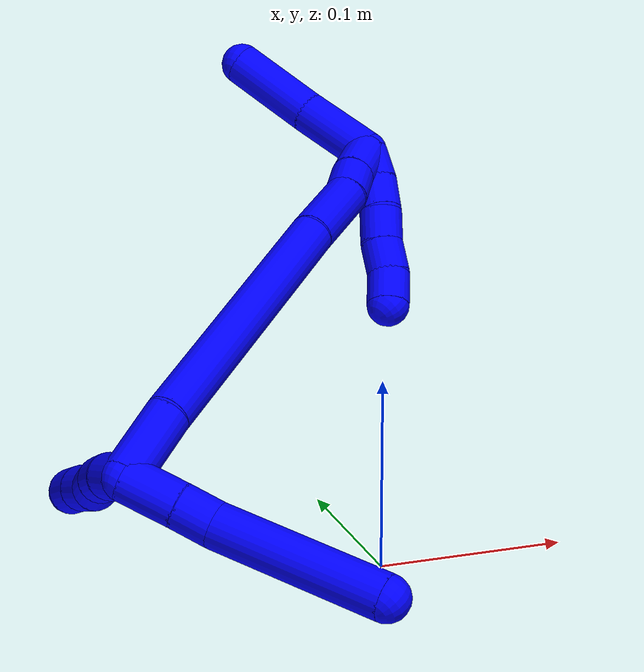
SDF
<sdf version="1.7">
 <world name="default">
  <model name="1">
   <static>0</static>
   <link name="1">
    <collision name="collision-cylinder-e_1_2_8">
     <pose>0.012931 -0.008279 0.002729 1.25238 0.977633 0.734493</pose>
     <geometry><cylinder><radius>0.0125</radius><length>0.031191</length></cylinder></geometry>
     <surface>
      <friction><ode><mu>1.16</mu><mu2>1.16</mu2><slip1>0</slip1><slip2>0</slip2></ode></friction>
      <contact><ode><kp>1e+06</kp><kd>1</kd><max_vel>0</max_vel><min_depth>0.001</min_depth></ode></contact>
     </surface>
    </collision>
    <visual name="visual-cylinder-e_1_2_8">
     <pose>0.012931 -0.008279 0.002729 1.25238 0.977633 0.734493</pose>
     <geometry><cylinder><radius>0.0125</radius><length>0.031191</length></cylinder></geometry>
     <material><ambient>0 0 1 1</ambient></material>
    </visual>
    <collision name="collision-cylinder-e_2_8_9">
     <pose>0.034975 -0.021853 0.007278 1.23975 1.01988 0.759584</pose>
     <geometry><cylinder><radius>0.0125</radius><length>0.021389</length></cylinder></geometry>
     <surface>
      <friction><ode><mu>1.16</mu><mu2>1.16</mu2><slip1>0</slip1><slip2>0</slip2></ode></friction>
      <contact><ode><kp>1e+06</kp><kd>1</kd><max_vel>0</max_vel><min_depth>0.001</min_depth></ode></contact>
     </surface>
    </collision>
    <visual name="visual-cylinder-e_2_8_9">
     <pose>0.034975 -0.021853 0.007278 1.23975 1.01988 0.759584</pose>
     <geometry><cylinder><radius>0.0125</radius><length>0.021389</length></cylinder></geometry>
     <material><ambient>0 0 1 1</ambient></material>
    </visual>
    <collision name="collision-cylinder-e_3_9_6">
     <pose>0.07711 -0.062424 0.015238 1.39847 0.74498 0.634961</pose>
     <geometry><cylinder><radius>0.0125</radius><length>0.09742</length></cylinder></geometry>
     <surface>
      <friction><ode><mu>1.16</mu><mu2>1.16</mu2><slip1>0</slip1><slip2>0</slip2></ode></friction>
      <contact><ode><kp>1e+06</kp><kd>1</kd><max_vel>0</max_vel><min_depth>0.001</min_depth></ode></contact>
     </surface>
    </collision>
    <visual name="visual-cylinder-e_3_9_6">
     <pose>0.07711 -0.062424 0.015238 1.39847 0.74498 0.634961</pose>
     <geometry><cylinder><radius>0.0125</radius><length>0.09742</length></cylinder></geometry>
     <material><ambient>0 0 1 1</ambient></material>
    </visual>
    <collision name="collision-cylinder-e_1_2_10">
     <pose>-0.000345 0.009913 0.001271 -1.44329 -0.034492 0.030353</pose>
     <geometry><cylinder><radius>0.0125</radius><length>0.02</length></cylinder></geometry>
     <surface>
      <friction><ode><mu>1.16</mu><mu2>1.16</mu2><slip1>0</slip1><slip2>0</slip2></ode></friction>
      <contact><ode><kp>1e+06</kp><kd>1</kd><max_vel>0</max_vel><min_depth>0.001</min_depth></ode></contact>
     </surface>
    </collision>
    <visual name="visual-cylinder-e_1_2_10">
     <pose>-0.000345 0.009913 0.001271 -1.44329 -0.034492 0.030353</pose>
     <geometry><cylinder><radius>0.0125</radius><length>0.02</length></cylinder></geometry>
     <material><ambient>0 0 1 1</ambient></material>
    </visual>
    <collision name="collision-cylinder-e_2_10_11">
     <pose>0.000945 0.029585 0.003984 -1.42409 0.164173 -0.141777</pose>
     <geometry><cylinder><radius>0.0125</radius><length>0.02</length></cylinder></geometry>
     <surface>
      <friction><ode><mu>1.16</mu><mu2>1.16</mu2><slip1>0</slip1><slip2>0</slip2></ode></friction>
      <contact><ode><kp>1e+06</kp><kd>1</kd><max_vel>0</max_vel><min_depth>0.001</min_depth></ode></contact>
     </surface>
    </collision>
    <visual name="visual-cylinder-e_2_10_11">
     <pose>0.000945 0.029585 0.003984 -1.42409 0.164173 -0.141777</pose>
     <geometry><cylinder><radius>0.0125</radius><length>0.02</length></cylinder></geometry>
     <material><ambient>0 0 1 1</ambient></material>
    </visual>
    <collision name="collision-cylinder-e_3_11_12">
     <pose>0.005499 0.048858 0.006418 -1.46691 0.296306 -0.267386</pose>
     <geometry><cylinder><radius>0.0125</radius><length>0.02</length></cylinder></geometry>
     <surface>
      <friction><ode><mu>1.16</mu><mu2>1.16</mu2><slip1>0</slip1><slip2>0</slip2></ode></friction>
      <contact><ode><kp>1e+06</kp><kd>1</kd><max_vel>0</max_vel><min_depth>0.001</min_depth></ode></contact>
     </surface>
    </collision>
    <visual name="visual-cylinder-e_3_11_12">
     <pose>0.005499 0.048858 0.006418 -1.46691 0.296306 -0.267386</pose>
     <geometry><cylinder><radius>0.0125</radius><length>0.02</length></cylinder></geometry>
     <material><ambient>0 0 1 1</ambient></material>
    </visual>
    <collision name="collision-cylinder-e_4_12_13">
     <pose>0.008601 0.068316 0.008436 -1.46797 0.018224 -0.016441</pose>
     <geometry><cylinder><radius>0.0125</radius><length>0.02</length></cylinder></geometry>
     <surface>
      <friction><ode><mu>1.16</mu><mu2>1.16</mu2><slip1>0</slip1><slip2>0</slip2></ode></friction>
      <contact><ode><kp>1e+06</kp><kd>1</kd><max_vel>0</max_vel><min_depth>0.001</min_depth></ode></contact>
     </surface>
    </collision>
    <visual name="visual-cylinder-e_4_12_13">
     <pose>0.008601 0.068316 0.008436 -1.46797 0.018224 -0.016441</pose>
     <geometry><cylinder><radius>0.0125</radius><length>0.02</length></cylinder></geometry>
     <material><ambient>0 0 1 1</ambient></material>
    </visual>
    <collision name="collision-cylinder-e_5_13_5">
     <pose>0.009874 0.088165 0.010316 -1.48475 0.109286 -0.100281</pose>
     <geometry><cylinder><radius>0.0125</radius><length>0.02</length></cylinder></geometry>
     <surface>
      <friction><ode><mu>1.16</mu><mu2>1.16</mu2><slip1>0</slip1><slip2>0</slip2></ode></friction>
      <contact><ode><kp>1e+06</kp><kd>1</kd><max_vel>0</max_vel><min_depth>0.001</min_depth></ode></contact>
     </surface>
    </collision>
    <visual name="visual-cylinder-e_5_13_5">
     <pose>0.009874 0.088165 0.010316 -1.48475 0.109286 -0.100281</pose>
     <geometry><cylinder><radius>0.0125</radius><length>0.02</length></cylinder></geometry>
     <material><ambient>0 0 1 1</ambient></material>
    </visual>
    <collision name="collision-cylinder-e_1_2_14">
     <pose>-0.001966 0.003095 0.021681 -0.141794 -0.089516 0.006361</pose>
     <geometry><cylinder><radius>0.0125</radius><length>0.043979</length></cylinder></geometry>
     <surface>
      <friction><ode><mu>1.16</mu><mu2>1.16</mu2><slip1>0</slip1><slip2>0</slip2></ode></friction>
      <contact><ode><kp>1e+06</kp><kd>1</kd><max_vel>0</max_vel><min_depth>0.001</min_depth></ode></contact>
     </surface>
    </collision>
    <visual name="visual-cylinder-e_1_2_14">
     <pose>-0.001966 0.003095 0.021681 -0.141794 -0.089516 0.006361</pose>
     <geometry><cylinder><radius>0.0125</radius><length>0.043979</length></cylinder></geometry>
     <material><ambient>0 0 1 1</ambient></material>
    </visual>
    <collision name="collision-cylinder-e_2_14_15">
     <pose>-0.003615 0.026135 0.12201 -0.248359 0.003907 -0.000488</pose>
     <geometry><cylinder><radius>0.0125</radius><length>0.162274</length></cylinder></geometry>
     <surface>
      <friction><ode><mu>1.16</mu><mu2>1.16</mu2><slip1>0</slip1><slip2>0</slip2></ode></friction>
      <contact><ode><kp>1e+06</kp><kd>1</kd><max_vel>0</max_vel><min_depth>0.001</min_depth></ode></contact>
     </surface>
    </collision>
    <visual name="visual-cylinder-e_2_14_15">
     <pose>-0.003615 0.026135 0.12201 -0.248359 0.003907 -0.000488</pose>
     <geometry><cylinder><radius>0.0125</radius><length>0.162274</length></cylinder></geometry>
     <material><ambient>0 0 1 1</ambient></material>
    </visual>
    <collision name="collision-cylinder-e_3_15_16">
     <pose>-0.001579 0.054433 0.222796 -0.3608 0.072492 -0.013227</pose>
     <geometry><cylinder><radius>0.0125</radius><length>0.04745</length></cylinder></geometry>
     <surface>
      <friction><ode><mu>1.16</mu><mu2>1.16</mu2><slip1>0</slip1><slip2>0</slip2></ode></friction>
      <contact><ode><kp>1e+06</kp><kd>1</kd><max_vel>0</max_vel><min_depth>0.001</min_depth></ode></contact>
     </surface>
    </collision>
    <visual name="visual-cylinder-e_3_15_16">
     <pose>-0.001579 0.054433 0.222796 -0.3608 0.072492 -0.013227</pose>
     <geometry><cylinder><radius>0.0125</radius><length>0.04745</length></cylinder></geometry>
     <material><ambient>0 0 1 1</ambient></material>
    </visual>
    <collision name="collision-cylinder-e_4_16_17">
     <pose>-0.001424 0.067175 0.253838 -0.458028 -0.156196 0.03648</pose>
     <geometry><cylinder><radius>0.0125</radius><length>0.020096</length></cylinder></geometry>
     <surface>
      <friction><ode><mu>1.16</mu><mu2>1.16</mu2><slip1>0</slip1><slip2>0</slip2></ode></friction>
      <contact><ode><kp>1e+06</kp><kd>1</kd><max_vel>0</max_vel><min_depth>0.001</min_depth></ode></contact>
     </surface>
    </collision>
    <visual name="visual-cylinder-e_4_16_17">
     <pose>-0.001424 0.067175 0.253838 -0.458028 -0.156196 0.03648</pose>
     <geometry><cylinder><radius>0.0125</radius><length>0.020096</length></cylinder></geometry>
     <material><ambient>0 0 1 1</ambient></material>
    </visual>
    <collision name="collision-cylinder-e_5_17_1">
     <pose>-0.003441 0.076798 0.274741 -0.411254 -0.034685 0.007235</pose>
     <geometry><cylinder><radius>0.0125</radius><length>0.026201</length></cylinder></geometry>
     <surface>
      <friction><ode><mu>1.16</mu><mu2>1.16</mu2><slip1>0</slip1><slip2>0</slip2></ode></friction>
      <contact><ode><kp>1e+06</kp><kd>1</kd><max_vel>0</max_vel><min_depth>0.001</min_depth></ode></contact>
     </surface>
    </collision>
    <visual name="visual-cylinder-e_5_17_1">
     <pose>-0.003441 0.076798 0.274741 -0.411254 -0.034685 0.007235</pose>
     <geometry><cylinder><radius>0.0125</radius><length>0.026201</length></cylinder></geometry>
     <material><ambient>0 0 1 1</ambient></material>
    </visual>
    <collision name="collision-cylinder-e_1_1_18">
     <pose>-0.02156 0.096979 0.28898 -1.42222 -0.863065 0.755285</pose>
     <geometry><cylinder><radius>0.0125</radius><length>0.046495</length></cylinder></geometry>
     <surface>
      <friction><ode><mu>1.16</mu><mu2>1.16</mu2><slip1>0</slip1><slip2>0</slip2></ode></friction>
      <contact><ode><kp>1e+06</kp><kd>1</kd><max_vel>0</max_vel><min_depth>0.001</min_depth></ode></contact>
     </surface>
    </collision>
    <visual name="visual-cylinder-e_1_1_18">
     <pose>-0.02156 0.096979 0.28898 -1.42222 -0.863065 0.755285</pose>
     <geometry><cylinder><radius>0.0125</radius><length>0.046495</length></cylinder></geometry>
     <material><ambient>0 0 1 1</ambient></material>
    </visual>
    <collision name="collision-cylinder-e_2_18_4">
     <pose>-0.061476 0.126691 0.292804 -1.46371 -0.982292 0.895768</pose>
     <geometry><cylinder><radius>0.0125</radius><length>0.053505</length></cylinder></geometry>
     <surface>
      <friction><ode><mu>1.16</mu><mu2>1.16</mu2><slip1>0</slip1><slip2>0</slip2></ode></friction>
      <contact><ode><kp>1e+06</kp><kd>1</kd><max_vel>0</max_vel><min_depth>0.001</min_depth></ode></contact>
     </surface>
    </collision>
    <visual name="visual-cylinder-e_2_18_4">
     <pose>-0.061476 0.126691 0.292804 -1.46371 -0.982292 0.895768</pose>
     <geometry><cylinder><radius>0.0125</radius><length>0.053505</length></cylinder></geometry>
     <material><ambient>0 0 1 1</ambient></material>
    </visual>
    <collision name="collision-cylinder-e_1_1_19">
     <pose>0.003876 0.079249 0.281099 2.68353 0.890186 2.23245</pose>
     <geometry><cylinder><radius>0.0125</radius><length>0.02</length></cylinder></geometry>
     <surface>
      <friction><ode><mu>1.16</mu><mu2>1.16</mu2><slip1>0</slip1><slip2>0</slip2></ode></friction>
      <contact><ode><kp>1e+06</kp><kd>1</kd><max_vel>0</max_vel><min_depth>0.001</min_depth></ode></contact>
     </surface>
    </collision>
    <visual name="visual-cylinder-e_1_1_19">
     <pose>0.003876 0.079249 0.281099 2.68353 0.890186 2.23245</pose>
     <geometry><cylinder><radius>0.0125</radius><length>0.02</length></cylinder></geometry>
     <material><ambient>0 0 1 1</ambient></material>
    </visual>
    <collision name="collision-cylinder-e_2_19_20">
     <pose>0.018042 0.073463 0.268377 2.74021 0.69375 2.11644</pose>
     <geometry><cylinder><radius>0.0125</radius><length>0.02</length></cylinder></geometry>
     <surface>
      <friction><ode><mu>1.16</mu><mu2>1.16</mu2><slip1>0</slip1><slip2>0</slip2></ode></friction>
      <contact><ode><kp>1e+06</kp><kd>1</kd><max_vel>0</max_vel><min_depth>0.001</min_depth></ode></contact>
     </surface>
    </collision>
    <visual name="visual-cylinder-e_2_19_20">
     <pose>0.018042 0.073463 0.268377 2.74021 0.69375 2.11644</pose>
     <geometry><cylinder><radius>0.0125</radius><length>0.02</length></cylinder></geometry>
     <material><ambient>0 0 1 1</ambient></material>
    </visual>
    <collision name="collision-cylinder-e_3_20_21">
     <pose>0.030952 0.069186 0.253821 2.97308 0.709558 2.69328</pose>
     <geometry><cylinder><radius>0.0125</radius><length>0.02</length></cylinder></geometry>
     <surface>
      <friction><ode><mu>1.16</mu><mu2>1.16</mu2><slip1>0</slip1><slip2>0</slip2></ode></friction>
      <contact><ode><kp>1e+06</kp><kd>1</kd><max_vel>0</max_vel><min_depth>0.001</min_depth></ode></contact>
     </surface>
    </collision>
    <visual name="visual-cylinder-e_3_20_21">
     <pose>0.030952 0.069186 0.253821 2.97308 0.709558 2.69328</pose>
     <geometry><cylinder><radius>0.0125</radius><length>0.02</length></cylinder></geometry>
     <material><ambient>0 0 1 1</ambient></material>
    </visual>
    <collision name="collision-cylinder-e_4_21_22">
     <pose>0.044686 0.065349 0.239915 2.76187 0.806567 2.29521</pose>
     <geometry><cylinder><radius>0.0125</radius><length>0.02</length></cylinder></geometry>
     <surface>
      <friction><ode><mu>1.16</mu><mu2>1.16</mu2><slip1>0</slip1><slip2>0</slip2></ode></friction>
      <contact><ode><kp>1e+06</kp><kd>1</kd><max_vel>0</max_vel><min_depth>0.001</min_depth></ode></contact>
     </surface>
    </collision>
    <visual name="visual-cylinder-e_4_21_22">
     <pose>0.044686 0.065349 0.239915 2.76187 0.806567 2.29521</pose>
     <geometry><cylinder><radius>0.0125</radius><length>0.02</length></cylinder></geometry>
     <material><ambient>0 0 1 1</ambient></material>
    </visual>
    <collision name="collision-cylinder-e_5_22_3">
     <pose>0.057195 0.060344 0.22536 2.84987 0.557385 2.19297</pose>
     <geometry><cylinder><radius>0.0125</radius><length>0.02</length></cylinder></geometry>
     <surface>
      <friction><ode><mu>1.16</mu><mu2>1.16</mu2><slip1>0</slip1><slip2>0</slip2></ode></friction>
      <contact><ode><kp>1e+06</kp><kd>1</kd><max_vel>0</max_vel><min_depth>0.001</min_depth></ode></contact>
     </surface>
    </collision>
    <visual name="visual-cylinder-e_5_22_3">
     <pose>0.057195 0.060344 0.22536 2.84987 0.557385 2.19297</pose>
     <geometry><cylinder><radius>0.0125</radius><length>0.02</length></cylinder></geometry>
     <material><ambient>0 0 1 1</ambient></material>
    </visual>
    <collision name="collision-sphere-3">
     <pose>0.062484 0.057903 0.217232 0 -0 0</pose>
     <geometry><sphere><radius>0.0125</radius></sphere></geometry>
     <surface>
      <friction><ode><mu>1.16</mu><mu2>1.16</mu2><slip1>0</slip1><slip2>0</slip2></ode></friction>
      <contact><ode><kp>1e+06</kp><kd>1</kd><max_vel>0</max_vel><min_depth>0.001</min_depth></ode></contact>
     </surface>
    </collision>
    <visual name="visual-sphere-3">
     <pose>0.062484 0.057903 0.217232 0 -0 0</pose>
     <geometry><sphere><radius>0.0125</radius></sphere></geometry>
     <material><ambient>0 0 1 1</ambient></material>
    </visual>
    <collision name="collision-sphere-22">
     <pose>0.051905 0.062784 0.233488 0 -0 0</pose>
     <geometry><sphere><radius>0.0125</radius></sphere></geometry>
     <surface>
      <friction><ode><mu>1.16</mu><mu2>1.16</mu2><slip1>0</slip1><slip2>0</slip2></ode></friction>
      <contact><ode><kp>1e+06</kp><kd>1</kd><max_vel>0</max_vel><min_depth>0.001</min_depth></ode></contact>
     </surface>
    </collision>
    <visual name="visual-sphere-22">
     <pose>0.051905 0.062784 0.233488 0 -0 0</pose>
     <geometry><sphere><radius>0.0125</radius></sphere></geometry>
     <material><ambient>0 0 1 1</ambient></material>
    </visual>
    <collision name="collision-sphere-21">
     <pose>0.037467 0.067914 0.246342 0 -0 0</pose>
     <geometry><sphere><radius>0.0125</radius></sphere></geometry>
     <surface>
      <friction><ode><mu>1.16</mu><mu2>1.16</mu2><slip1>0</slip1><slip2>0</slip2></ode></friction>
      <contact><ode><kp>1e+06</kp><kd>1</kd><max_vel>0</max_vel><min_depth>0.001</min_depth></ode></contact>
     </surface>
    </collision>
    <visual name="visual-sphere-21">
     <pose>0.037467 0.067914 0.246342 0 -0 0</pose>
     <geometry><sphere><radius>0.0125</radius></sphere></geometry>
     <material><ambient>0 0 1 1</ambient></material>
    </visual>
    <collision name="collision-sphere-20">
     <pose>0.024437 0.070459 0.2613 0 -0 0</pose>
     <geometry><sphere><radius>0.0125</radius></sphere></geometry>
     <surface>
      <friction><ode><mu>1.16</mu><mu2>1.16</mu2><slip1>0</slip1><slip2>0</slip2></ode></friction>
      <contact><ode><kp>1e+06</kp><kd>1</kd><max_vel>0</max_vel><min_depth>0.001</min_depth></ode></contact>
     </surface>
    </collision>
    <visual name="visual-sphere-20">
     <pose>0.024437 0.070459 0.2613 0 -0 0</pose>
     <geometry><sphere><radius>0.0125</radius></sphere></geometry>
     <material><ambient>0 0 1 1</ambient></material>
    </visual>
    <collision name="collision-sphere-19">
     <pose>0.011648 0.076466 0.275455 0 -0 0</pose>
     <geometry><sphere><radius>0.0125</radius></sphere></geometry>
     <surface>
      <friction><ode><mu>1.16</mu><mu2>1.16</mu2><slip1>0</slip1><slip2>0</slip2></ode></friction>
      <contact><ode><kp>1e+06</kp><kd>1</kd><max_vel>0</max_vel><min_depth>0.001</min_depth></ode></contact>
     </surface>
    </collision>
    <visual name="visual-sphere-19">
     <pose>0.011648 0.076466 0.275455 0 -0 0</pose>
     <geometry><sphere><radius>0.0125</radius></sphere></geometry>
     <material><ambient>0 0 1 1</ambient></material>
    </visual>
    <collision name="collision-sphere-11">
     <pose>0.002579 0.039345 0.005426 0 -0 0</pose>
     <geometry><sphere><radius>0.0125</radius></sphere></geometry>
     <surface>
      <friction><ode><mu>1.16</mu><mu2>1.16</mu2><slip1>0</slip1><slip2>0</slip2></ode></friction>
      <contact><ode><kp>1e+06</kp><kd>1</kd><max_vel>0</max_vel><min_depth>0.001</min_depth></ode></contact>
     </surface>
    </collision>
    <visual name="visual-sphere-11">
     <pose>0.002579 0.039345 0.005426 0 -0 0</pose>
     <geometry><sphere><radius>0.0125</radius></sphere></geometry>
     <material><ambient>0 0 1 1</ambient></material>
    </visual>
    <collision name="collision-sphere-10">
     <pose>-0.00069 0.019826 0.002542 0 -0 0</pose>
     <geometry><sphere><radius>0.0125</radius></sphere></geometry>
     <surface>
      <friction><ode><mu>1.16</mu><mu2>1.16</mu2><slip1>0</slip1><slip2>0</slip2></ode></friction>
      <contact><ode><kp>1e+06</kp><kd>1</kd><max_vel>0</max_vel><min_depth>0.001</min_depth></ode></contact>
     </surface>
    </collision>
    <visual name="visual-sphere-10">
     <pose>-0.00069 0.019826 0.002542 0 -0 0</pose>
     <geometry><sphere><radius>0.0125</radius></sphere></geometry>
     <material><ambient>0 0 1 1</ambient></material>
    </visual>
    <collision name="collision-sphere-6">
     <pose>0.110134 -0.0977 0.021378 0 -0 0</pose>
     <geometry><sphere><radius>0.0125</radius></sphere></geometry>
     <surface>
      <friction><ode><mu>1.16</mu><mu2>1.16</mu2><slip1>0</slip1><slip2>0</slip2></ode></friction>
      <contact><ode><kp>1e+06</kp><kd>1</kd><max_vel>0</max_vel><min_depth>0.001</min_depth></ode></contact>
     </surface>
    </collision>
    <visual name="visual-sphere-6">
     <pose>0.110134 -0.0977 0.021378 0 -0 0</pose>
     <geometry><sphere><radius>0.0125</radius></sphere></geometry>
     <material><ambient>0 0 1 1</ambient></material>
    </visual>
    <collision name="collision-sphere-9">
     <pose>0.044087 -0.027147 0.009097 0 -0 0</pose>
     <geometry><sphere><radius>0.0125</radius></sphere></geometry>
     <surface>
      <friction><ode><mu>1.16</mu><mu2>1.16</mu2><slip1>0</slip1><slip2>0</slip2></ode></friction>
      <contact><ode><kp>1e+06</kp><kd>1</kd><max_vel>0</max_vel><min_depth>0.001</min_depth></ode></contact>
     </surface>
    </collision>
    <visual name="visual-sphere-9">
     <pose>0.044087 -0.027147 0.009097 0 -0 0</pose>
     <geometry><sphere><radius>0.0125</radius></sphere></geometry>
     <material><ambient>0 0 1 1</ambient></material>
    </visual>
    <collision name="collision-sphere-2">
     <geometry><sphere><radius>0.0125</radius></sphere></geometry>
     <surface>
      <friction><ode><mu>1.16</mu><mu2>1.16</mu2><slip1>0</slip1><slip2>0</slip2></ode></friction>
      <contact><ode><kp>1e+06</kp><kd>1</kd><max_vel>0</max_vel><min_depth>0.001</min_depth></ode></contact>
     </surface>
    </collision>
    <visual name="visual-sphere-2">
     <geometry><sphere><radius>0.0125</radius></sphere></geometry>
     <material><ambient>0 0 1 1</ambient></material>
    </visual>
    <collision name="collision-sphere-8">
     <pose>0.025862 -0.016559 0.005458 0 -0 0</pose>
     <geometry><sphere><radius>0.0125</radius></sphere></geometry>
     <surface>
      <friction><ode><mu>1.16</mu><mu2>1.16</mu2><slip1>0</slip1><slip2>0</slip2></ode></friction>
      <contact><ode><kp>1e+06</kp><kd>1</kd><max_vel>0</max_vel><min_depth>0.001</min_depth></ode></contact>
     </surface>
    </collision>
    <visual name="visual-sphere-8">
     <pose>0.025862 -0.016559 0.005458 0 -0 0</pose>
     <geometry><sphere><radius>0.0125</radius></sphere></geometry>
     <material><ambient>0 0 1 1</ambient></material>
    </visual>
    <collision name="collision-sphere-12">
     <pose>0.008419 0.05837 0.00741 0 -0 0</pose>
     <geometry><sphere><radius>0.0125</radius></sphere></geometry>
     <surface>
      <friction><ode><mu>1.16</mu><mu2>1.16</mu2><slip1>0</slip1><slip2>0</slip2></ode></friction>
      <contact><ode><kp>1e+06</kp><kd>1</kd><max_vel>0</max_vel><min_depth>0.001</min_depth></ode></contact>
     </surface>
    </collision>
    <visual name="visual-sphere-12">
     <pose>0.008419 0.05837 0.00741 0 -0 0</pose>
     <geometry><sphere><radius>0.0125</radius></sphere></geometry>
     <material><ambient>0 0 1 1</ambient></material>
    </visual>
    <collision name="collision-sphere-13">
     <pose>0.008783 0.078261 0.009462 0 -0 0</pose>
     <geometry><sphere><radius>0.0125</radius></sphere></geometry>
     <surface>
      <friction><ode><mu>1.16</mu><mu2>1.16</mu2><slip1>0</slip1><slip2>0</slip2></ode></friction>
      <contact><ode><kp>1e+06</kp><kd>1</kd><max_vel>0</max_vel><min_depth>0.001</min_depth></ode></contact>
     </surface>
    </collision>
    <visual name="visual-sphere-13">
     <pose>0.008783 0.078261 0.009462 0 -0 0</pose>
     <geometry><sphere><radius>0.0125</radius></sphere></geometry>
     <material><ambient>0 0 1 1</ambient></material>
    </visual>
    <collision name="collision-sphere-5">
     <pose>0.010965 0.098068 0.011171 0 -0 0</pose>
     <geometry><sphere><radius>0.0125</radius></sphere></geometry>
     <surface>
      <friction><ode><mu>1.16</mu><mu2>1.16</mu2><slip1>0</slip1><slip2>0</slip2></ode></friction>
      <contact><ode><kp>1e+06</kp><kd>1</kd><max_vel>0</max_vel><min_depth>0.001</min_depth></ode></contact>
     </surface>
    </collision>
    <visual name="visual-sphere-5">
     <pose>0.010965 0.098068 0.011171 0 -0 0</pose>
     <geometry><sphere><radius>0.0125</radius></sphere></geometry>
     <material><ambient>0 0 1 1</ambient></material>
    </visual>
    <collision name="collision-sphere-14">
     <pose>-0.003932 0.00619 0.043363 0 -0 0</pose>
     <geometry><sphere><radius>0.0125</radius></sphere></geometry>
     <surface>
      <friction><ode><mu>1.16</mu><mu2>1.16</mu2><slip1>0</slip1><slip2>0</slip2></ode></friction>
      <contact><ode><kp>1e+06</kp><kd>1</kd><max_vel>0</max_vel><min_depth>0.001</min_depth></ode></contact>
     </surface>
    </collision>
    <visual name="visual-sphere-14">
     <pose>-0.003932 0.00619 0.043363 0 -0 0</pose>
     <geometry><sphere><radius>0.0125</radius></sphere></geometry>
     <material><ambient>0 0 1 1</ambient></material>
    </visual>
    <collision name="collision-sphere-15">
     <pose>-0.003298 0.046079 0.200657 0 -0 0</pose>
     <geometry><sphere><radius>0.0125</radius></sphere></geometry>
     <surface>
      <friction><ode><mu>1.16</mu><mu2>1.16</mu2><slip1>0</slip1><slip2>0</slip2></ode></friction>
      <contact><ode><kp>1e+06</kp><kd>1</kd><max_vel>0</max_vel><min_depth>0.001</min_depth></ode></contact>
     </surface>
    </collision>
    <visual name="visual-sphere-15">
     <pose>-0.003298 0.046079 0.200657 0 -0 0</pose>
     <geometry><sphere><radius>0.0125</radius></sphere></geometry>
     <material><ambient>0 0 1 1</ambient></material>
    </visual>
    <collision name="collision-sphere-16">
     <pose>0.000139 0.062786 0.244935 0 -0 0</pose>
     <geometry><sphere><radius>0.0125</radius></sphere></geometry>
     <surface>
      <friction><ode><mu>1.16</mu><mu2>1.16</mu2><slip1>0</slip1><slip2>0</slip2></ode></friction>
      <contact><ode><kp>1e+06</kp><kd>1</kd><max_vel>0</max_vel><min_depth>0.001</min_depth></ode></contact>
     </surface>
    </collision>
    <visual name="visual-sphere-16">
     <pose>0.000139 0.062786 0.244935 0 -0 0</pose>
     <geometry><sphere><radius>0.0125</radius></sphere></geometry>
     <material><ambient>0 0 1 1</ambient></material>
    </visual>
    <collision name="collision-sphere-17">
     <pose>-0.002987 0.071564 0.26274 0 -0 0</pose>
     <geometry><sphere><radius>0.0125</radius></sphere></geometry>
     <surface>
      <friction><ode><mu>1.16</mu><mu2>1.16</mu2><slip1>0</slip1><slip2>0</slip2></ode></friction>
      <contact><ode><kp>1e+06</kp><kd>1</kd><max_vel>0</max_vel><min_depth>0.001</min_depth></ode></contact>
     </surface>
    </collision>
    <visual name="visual-sphere-17">
     <pose>-0.002987 0.071564 0.26274 0 -0 0</pose>
     <geometry><sphere><radius>0.0125</radius></sphere></geometry>
     <material><ambient>0 0 1 1</ambient></material>
    </visual>
    <collision name="collision-sphere-1">
     <pose>-0.003896 0.082032 0.286742 0 -0 0</pose>
     <geometry><sphere><radius>0.0125</radius></sphere></geometry>
     <surface>
      <friction><ode><mu>1.16</mu><mu2>1.16</mu2><slip1>0</slip1><slip2>0</slip2></ode></friction>
      <contact><ode><kp>1e+06</kp><kd>1</kd><max_vel>0</max_vel><min_depth>0.001</min_depth></ode></contact>
     </surface>
    </collision>
    <visual name="visual-sphere-1">
     <pose>-0.003896 0.082032 0.286742 0 -0 0</pose>
     <geometry><sphere><radius>0.0125</radius></sphere></geometry>
     <material><ambient>0 0 1 1</ambient></material>
    </visual>
    <collision name="collision-sphere-18">
     <pose>-0.039224 0.111926 0.291217 0 -0 0</pose>
     <geometry><sphere><radius>0.0125</radius></sphere></geometry>
     <surface>
      <friction><ode><mu>1.16</mu><mu2>1.16</mu2><slip1>0</slip1><slip2>0</slip2></ode></friction>
      <contact><ode><kp>1e+06</kp><kd>1</kd><max_vel>0</max_vel><min_depth>0.001</min_depth></ode></contact>
     </surface>
    </collision>
    <visual name="visual-sphere-18">
     <pose>-0.039224 0.111926 0.291217 0 -0 0</pose>
     <geometry><sphere><radius>0.0125</radius></sphere></geometry>
     <material><ambient>0 0 1 1</ambient></material>
    </visual>
    <collision name="collision-sphere-4">
     <pose>-0.083728 0.141457 0.294391 0 -0 0</pose>
     <geometry><sphere><radius>0.0125</radius></sphere></geometry>
     <surface>
      <friction><ode><mu>1.16</mu><mu2>1.16</mu2><slip1>0</slip1><slip2>0</slip2></ode></friction>
      <contact><ode><kp>1e+06</kp><kd>1</kd><max_vel>0</max_vel><min_depth>0.001</min_depth></ode></contact>
     </surface>
    </collision>
    <visual name="visual-sphere-4">
     <pose>-0.083728 0.141457 0.294391 0 -0 0</pose>
     <geometry><sphere><radius>0.0125</radius></sphere></geometry>
     <material><ambient>0 0 1 1</ambient></material>
    </visual>
    <inertial>
     <pose>0.009455 0.035535 0.133909 0 -0 0</pose>
     <mass>0.75</mass>
     <inertia><ixx>0.000509</ixx><ixy>0</ixy><ixz>0</ixz><iyy>0.000505</iyy><iyz>0</iyz><izz>-8e-05</izz></inertia>
    </inertial>
   </link>
   <pose>-0.125314 0.035511 0.051275 -0.640254 0.903513 -0.277146</pose>
  </model>
 </world>
</sdf>
